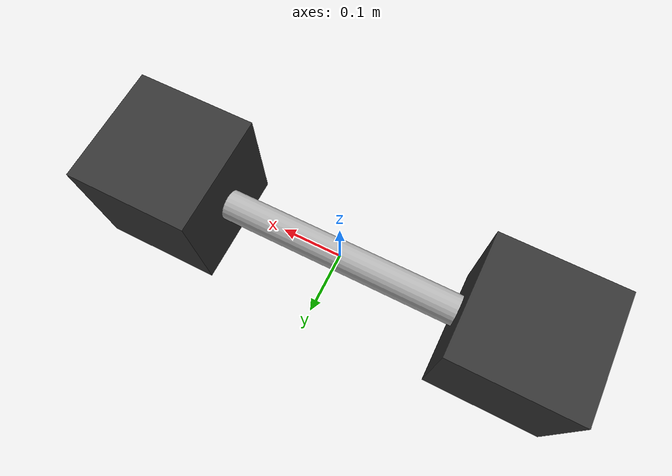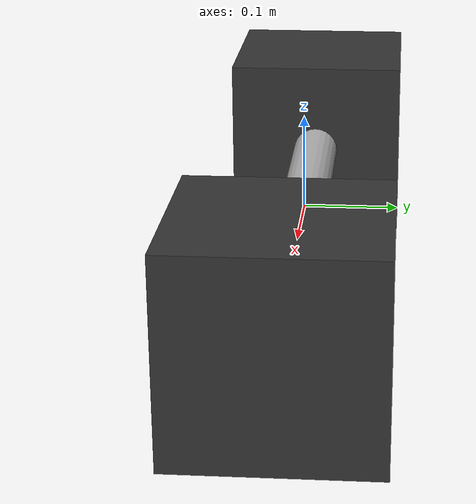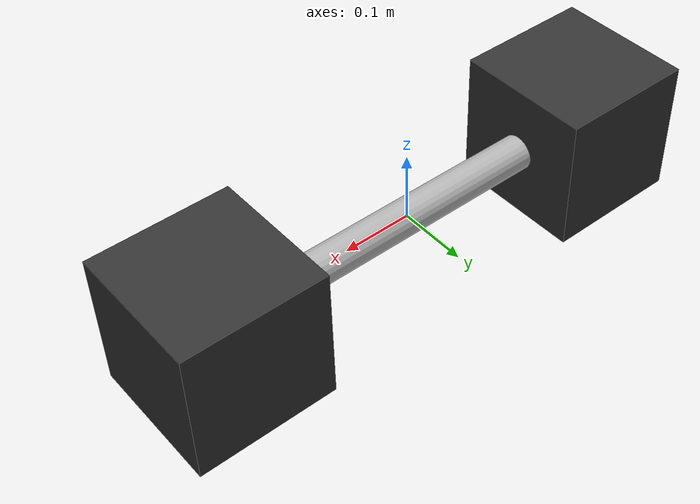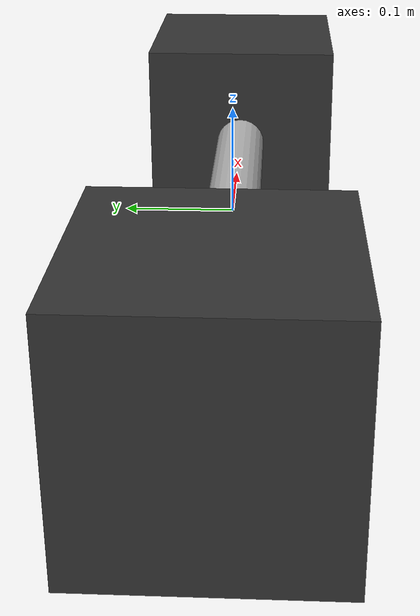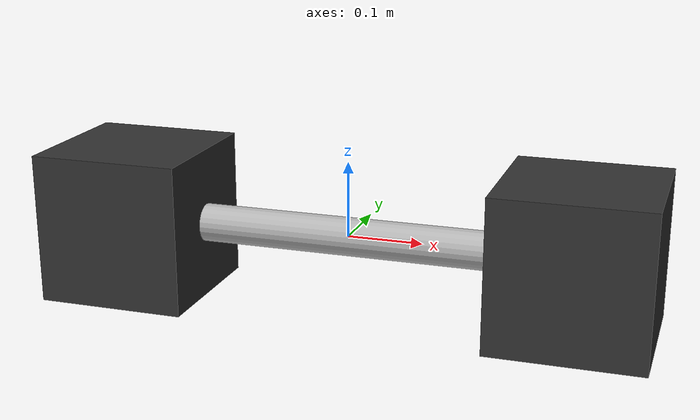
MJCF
<mujoco model="barbell">
<!-- Copyright (c) 2025 Boston Dynamics AI Institute LLC. All rights reserved. -->
  <worldbody>
    <body name="barbell">
      <joint name="barbell_joint" type="free" limited="false"/>
      <inertial pos="0 0 0" mass="1.5" diaginertia="0.0025 0.04625 0.04625"/>
      <geom name="bar_shaft"
            type="cylinder"
            pos="0 0 0"
            quat="0.707 0 0.707 0"
            size="0.0254 0.3"
            rgba="0.7 0.7 0.7 1"
            density="7850"/>

      <geom name="weight_left"
            type="box"
            pos="-0.3 0 0"
            quat="0.707 0 0.707 0"
            size="0.1 0.1 0.1"
            rgba="0.2 0.2 0.2 1"/>

      <geom name="weight_right"
            type="box"
            pos="0.3 0 0"
            quat="0.707 0 0.707 0"
            size="0.1 0.1 0.1"
            rgba="0.2 0.2 0.2 1"/>

      <site name="site_object" pos="0 0 0" size="0.01"/>
    </body>
  </worldbody>
</mujoco>
